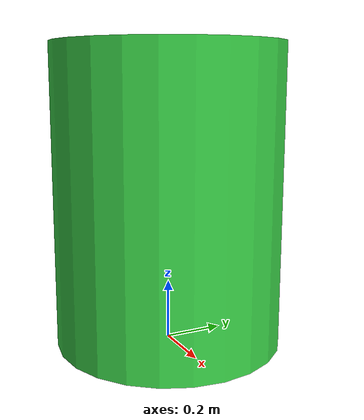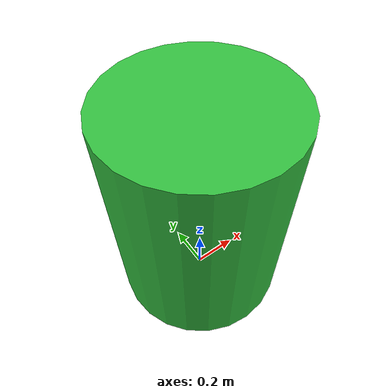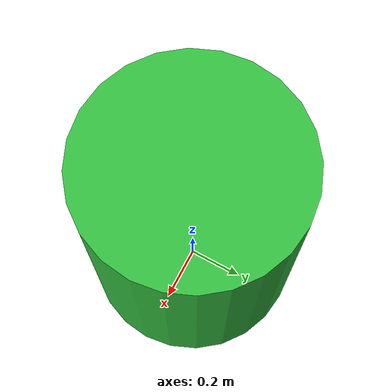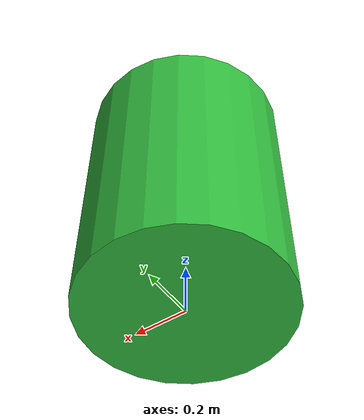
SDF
<?xml version="1.0"?>
<sdf version="1.7">
  <model name="xgc2_geom_cylinder">
    <link name="body">
      <kinematic>true</kinematic>
      <gravity>false</gravity>
      <collision name="cylinder">
        <pose>0 0 0.5 0 0 0</pose>
        <geometry><cylinder><radius>0.38</radius><length>1.0</length></cylinder></geometry>
      </collision>
      <visual name="cylinder">
        <pose>0 0 0.5 0 0 0</pose>
        <geometry><cylinder><radius>0.38</radius><length>1.0</length></cylinder></geometry>
        <material><ambient>0.2 0.75 0.25 1</ambient><diffuse>0.2 0.75 0.25 1</diffuse></material>
      </visual>
    </link>
  </model>
</sdf>
